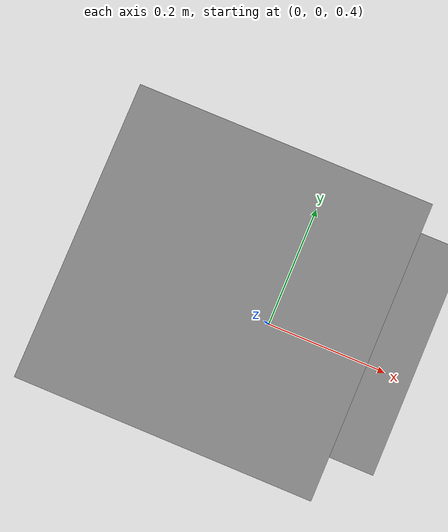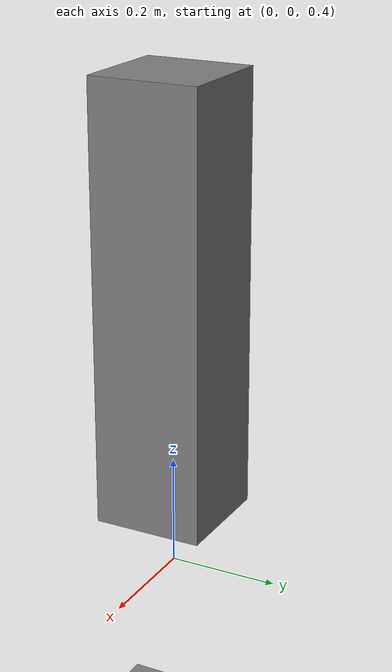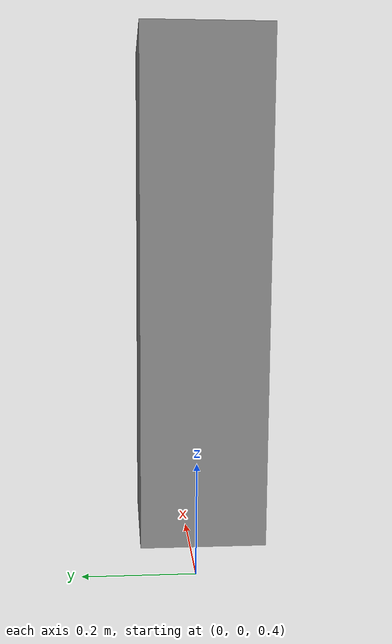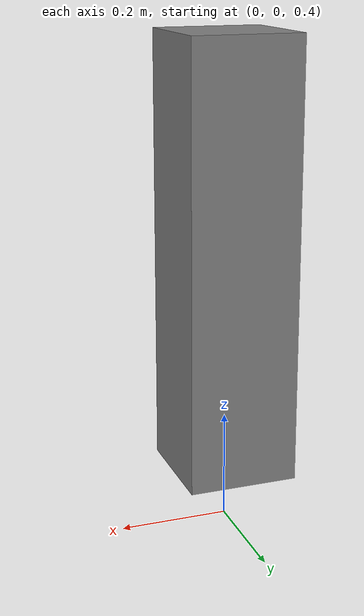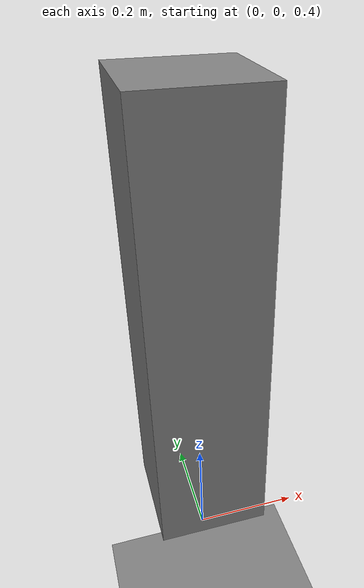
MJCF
<mujoco>
    <worldbody>
        <geom type="plane" size="1 1 0.1"/>

        <body name="surface" pos="0 0 0">
            <joint name="surface_hinge" type="hinge" axis="0 1 0"/>
            <inertial mass="0.001" pos="0 0 0" diaginertia="0.0001 0.0001 0.0001"/>

            <body name="ankle" pos="0 0 0">
                <joint name="ankle_hinge" type="hinge" axis="0 1 0" damping="351.0"/>
                <inertial mass="77.8" pos="0 0 0.9" diaginertia="0.01 0.01 0.01"/>
                <geom type="box" size="0.1 0.1 0.4" pos="0 0 0.9"/>
            </body>
        </body>
    </worldbody>

    <sensor>
        <jointpos joint="surface_hinge"/>
        <jointpos joint="ankle_hinge"/>
    </sensor>
</mujoco>
